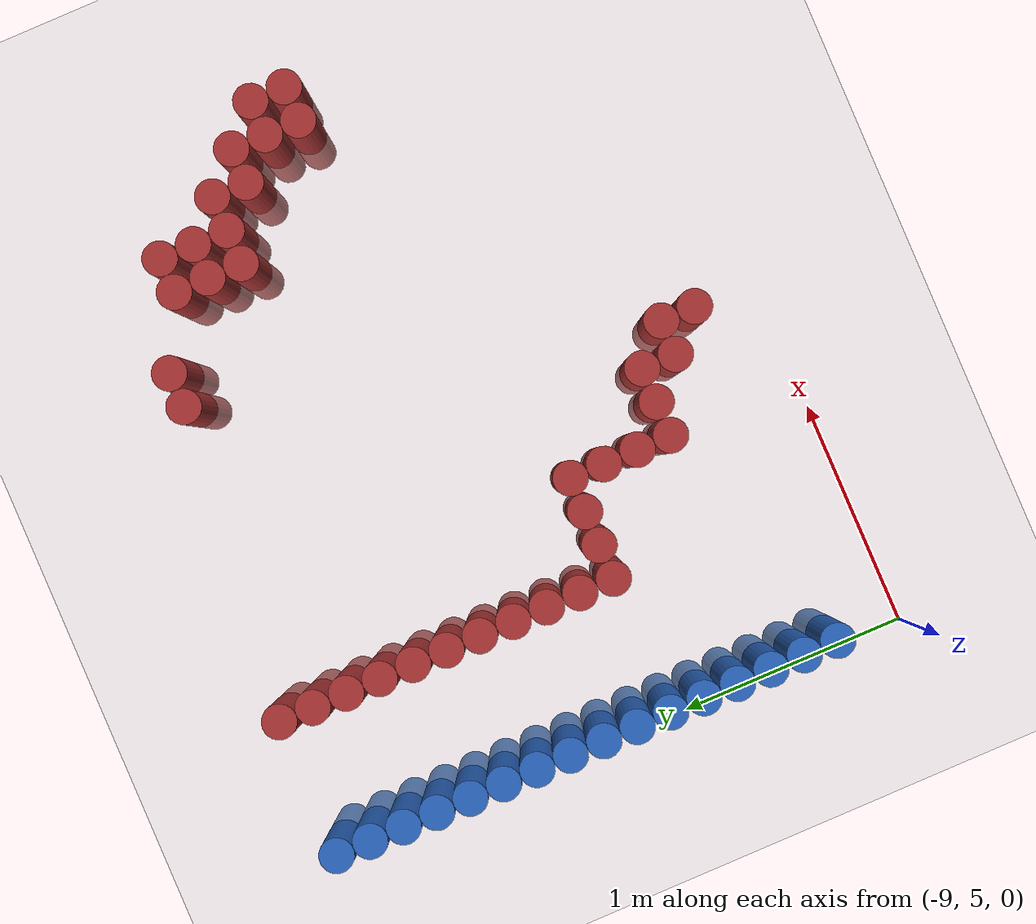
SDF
<sdf version="1.6">
 <world name="default">
  <model name="ground_plane">
   <static>1</static>
   <link name="link">
    <collision name="collision">
     <geometry><plane><normal>0 0 1</normal><size>100 100</size></plane></geometry>
     <surface><friction><ode><mu>100</mu><mu2>50</mu2></ode></friction></surface>
    </collision>
    <visual name="visual">
     <cast_shadows>0</cast_shadows>
     <geometry><plane><normal>0 0 1</normal><size>100 100</size></plane></geometry>
     <material>
      <script><uri>file://media/materials/scripts/gazebo.material</uri><name>Gazebo/Grey</name></script>
     </material>
    </visual>
   </link>
  </model>
  <model name="unit_cylinder_126">
   <static>1</static>
   <pose>-8.925000 5.325000 0.000000 0.000000 0.000000 0.000000</pose>
   <link name="link">
    <inertial>
     <mass>1</mass>
     <inertia><ixx>0.145833</ixx><ixy>0</ixy><ixz>0</ixz><iyy>0.145833</iyy><iyz>0</iyz><izz>0.125</izz></inertia>
    </inertial>
    <collision name="collision">
     <geometry><cylinder><radius>0.075000</radius><length>1</length></cylinder></geometry>
    </collision>
    <visual name="visual">
     <geometry><cylinder><radius>0.075000</radius><length>1</length></cylinder></geometry>
     <material>
      <ambient>0.152000 0.379000 0.720000 1</ambient>
      <diffuse>0.152000 0.379000 0.720000 1</diffuse>
     </material>
     <material>
      <script><name>Gazebo/Grey</name><uri>file://media/materials/scripts/gazebo.material</uri></script>
     </material>
    </visual>
   </link>
  </model>
  <model name="unit_cylinder_127">
   <static>1</static>
   <pose>-8.925000 5.475000 0.000000 0.000000 0.000000 0.000000</pose>
   <link name="link">
    <inertial>
     <mass>1</mass>
     <inertia><ixx>0.145833</ixx><ixy>0</ixy><ixz>0</ixz><iyy>0.145833</iyy><iyz>0</iyz><izz>0.125</izz></inertia>
    </inertial>
    <collision name="collision">
     <geometry><cylinder><radius>0.075000</radius><length>1</length></cylinder></geometry>
    </collision>
    <visual name="visual">
     <geometry><cylinder><radius>0.075000</radius><length>1</length></cylinder></geometry>
     <material>
      <ambient>0.152000 0.379000 0.720000 1</ambient>
      <diffuse>0.152000 0.379000 0.720000 1</diffuse>
     </material>
     <material>
      <script><name>Gazebo/Grey</name><uri>file://media/materials/scripts/gazebo.material</uri></script>
     </material>
    </visual>
   </link>
  </model>
  <model name="unit_cylinder_128">
   <static>1</static>
   <pose>-8.925000 5.625000 0.000000 0.000000 0.000000 0.000000</pose>
   <link name="link">
    <inertial>
     <mass>1</mass>
     <inertia><ixx>0.145833</ixx><ixy>0</ixy><ixz>0</ixz><iyy>0.145833</iyy><iyz>0</iyz><izz>0.125</izz></inertia>
    </inertial>
    <collision name="collision">
     <geometry><cylinder><radius>0.075000</radius><length>1</length></cylinder></geometry>
    </collision>
    <visual name="visual">
     <geometry><cylinder><radius>0.075000</radius><length>1</length></cylinder></geometry>
     <material>
      <ambient>0.152000 0.379000 0.720000 1</ambient>
      <diffuse>0.152000 0.379000 0.720000 1</diffuse>
     </material>
     <material>
      <script><name>Gazebo/Grey</name><uri>file://media/materials/scripts/gazebo.material</uri></script>
     </material>
    </visual>
   </link>
  </model>
  <model name="unit_cylinder_129">
   <static>1</static>
   <pose>-8.925000 5.775000 0.000000 0.000000 0.000000 0.000000</pose>
   <link name="link">
    <inertial>
     <mass>1</mass>
     <inertia><ixx>0.145833</ixx><ixy>0</ixy><ixz>0</ixz><iyy>0.145833</iyy><iyz>0</iyz><izz>0.125</izz></inertia>
    </inertial>
    <collision name="collision">
     <geometry><cylinder><radius>0.075000</radius><length>1</length></cylinder></geometry>
    </collision>
    <visual name="visual">
     <geometry><cylinder><radius>0.075000</radius><length>1</length></cylinder></geometry>
     <material>
      <ambient>0.152000 0.379000 0.720000 1</ambient>
      <diffuse>0.152000 0.379000 0.720000 1</diffuse>
     </material>
     <material>
      <script><name>Gazebo/Grey</name><uri>file://media/materials/scripts/gazebo.material</uri></script>
     </material>
    </visual>
   </link>
  </model>
  <model name="unit_cylinder_130">
   <static>1</static>
   <pose>-8.925000 5.925000 0.000000 0.000000 0.000000 0.000000</pose>
   <link name="link">
    <inertial>
     <mass>1</mass>
     <inertia><ixx>0.145833</ixx><ixy>0</ixy><ixz>0</ixz><iyy>0.145833</iyy><iyz>0</iyz><izz>0.125</izz></inertia>
    </inertial>
    <collision name="collision">
     <geometry><cylinder><radius>0.075000</radius><length>1</length></cylinder></geometry>
    </collision>
    <visual name="visual">
     <geometry><cylinder><radius>0.075000</radius><length>1</length></cylinder></geometry>
     <material>
      <ambient>0.152000 0.379000 0.720000 1</ambient>
      <diffuse>0.152000 0.379000 0.720000 1</diffuse>
     </material>
     <material>
      <script><name>Gazebo/Grey</name><uri>file://media/materials/scripts/gazebo.material</uri></script>
     </material>
    </visual>
   </link>
  </model>
  <model name="unit_cylinder_131">
   <static>1</static>
   <pose>-8.925000 6.075000 0.000000 0.000000 0.000000 0.000000</pose>
   <link name="link">
    <inertial>
     <mass>1</mass>
     <inertia><ixx>0.145833</ixx><ixy>0</ixy><ixz>0</ixz><iyy>0.145833</iyy><iyz>0</iyz><izz>0.125</izz></inertia>
    </inertial>
    <collision name="collision">
     <geometry><cylinder><radius>0.075000</radius><length>1</length></cylinder></geometry>
    </collision>
    <visual name="visual">
     <geometry><cylinder><radius>0.075000</radius><length>1</length></cylinder></geometry>
     <material>
      <ambient>0.152000 0.379000 0.720000 1</ambient>
      <diffuse>0.152000 0.379000 0.720000 1</diffuse>
     </material>
     <material>
      <script><name>Gazebo/Grey</name><uri>file://media/materials/scripts/gazebo.material</uri></script>
     </material>
    </visual>
   </link>
  </model>
  <model name="unit_cylinder_132">
   <static>1</static>
   <pose>-8.925000 6.225000 0.000000 0.000000 0.000000 0.000000</pose>
   <link name="link">
    <inertial>
     <mass>1</mass>
     <inertia><ixx>0.145833</ixx><ixy>0</ixy><ixz>0</ixz><iyy>0.145833</iyy><iyz>0</iyz><izz>0.125</izz></inertia>
    </inertial>
    <collision name="collision">
     <geometry><cylinder><radius>0.075000</radius><length>1</length></cylinder></geometry>
    </collision>
    <visual name="visual">
     <geometry><cylinder><radius>0.075000</radius><length>1</length></cylinder></geometry>
     <material>
      <ambient>0.152000 0.379000 0.720000 1</ambient>
      <diffuse>0.152000 0.379000 0.720000 1</diffuse>
     </material>
     <material>
      <script><name>Gazebo/Grey</name><uri>file://media/materials/scripts/gazebo.material</uri></script>
     </material>
    </visual>
   </link>
  </model>
  <model name="unit_cylinder_133">
   <static>1</static>
   <pose>-8.925000 6.375000 0.000000 0.000000 0.000000 0.000000</pose>
   <link name="link">
    <inertial>
     <mass>1</mass>
     <inertia><ixx>0.145833</ixx><ixy>0</ixy><ixz>0</ixz><iyy>0.145833</iyy><iyz>0</iyz><izz>0.125</izz></inertia>
    </inertial>
    <collision name="collision">
     <geometry><cylinder><radius>0.075000</radius><length>1</length></cylinder></geometry>
    </collision>
    <visual name="visual">
     <geometry><cylinder><radius>0.075000</radius><length>1</length></cylinder></geometry>
     <material>
      <ambient>0.152000 0.379000 0.720000 1</ambient>
      <diffuse>0.152000 0.379000 0.720000 1</diffuse>
     </material>
     <material>
      <script><name>Gazebo/Grey</name><uri>file://media/materials/scripts/gazebo.material</uri></script>
     </material>
    </visual>
   </link>
  </model>
  <model name="unit_cylinder_134">
   <static>1</static>
   <pose>-8.925000 6.525000 0.000000 0.000000 0.000000 0.000000</pose>
   <link name="link">
    <inertial>
     <mass>1</mass>
     <inertia><ixx>0.145833</ixx><ixy>0</ixy><ixz>0</ixz><iyy>0.145833</iyy><iyz>0</iyz><izz>0.125</izz></inertia>
    </inertial>
    <collision name="collision">
     <geometry><cylinder><radius>0.075000</radius><length>1</length></cylinder></geometry>
    </collision>
    <visual name="visual">
     <geometry><cylinder><radius>0.075000</radius><length>1</length></cylinder></geometry>
     <material>
      <ambient>0.152000 0.379000 0.720000 1</ambient>
      <diffuse>0.152000 0.379000 0.720000 1</diffuse>
     </material>
     <material>
      <script><name>Gazebo/Grey</name><uri>file://media/materials/scripts/gazebo.material</uri></script>
     </material>
    </visual>
   </link>
  </model>
  <model name="unit_cylinder_135">
   <static>1</static>
   <pose>-8.925000 6.675000 0.000000 0.000000 0.000000 0.000000</pose>
   <link name="link">
    <inertial>
     <mass>1</mass>
     <inertia><ixx>0.145833</ixx><ixy>0</ixy><ixz>0</ixz><iyy>0.145833</iyy><iyz>0</iyz><izz>0.125</izz></inertia>
    </inertial>
    <collision name="collision">
     <geometry><cylinder><radius>0.075000</radius><length>1</length></cylinder></geometry>
    </collision>
    <visual name="visual">
     <geometry><cylinder><radius>0.075000</radius><length>1</length></cylinder></geometry>
     <material>
      <ambient>0.152000 0.379000 0.720000 1</ambient>
      <diffuse>0.152000 0.379000 0.720000 1</diffuse>
     </material>
     <material>
      <script><name>Gazebo/Grey</name><uri>file://media/materials/scripts/gazebo.material</uri></script>
     </material>
    </visual>
   </link>
  </model>
  <model name="unit_cylinder_136">
   <static>1</static>
   <pose>-8.925000 6.825000 0.000000 0.000000 0.000000 0.000000</pose>
   <link name="link">
    <inertial>
     <mass>1</mass>
     <inertia><ixx>0.145833</ixx><ixy>0</ixy><ixz>0</ixz><iyy>0.145833</iyy><iyz>0</iyz><izz>0.125</izz></inertia>
    </inertial>
    <collision name="collision">
     <geometry><cylinder><radius>0.075000</radius><length>1</length></cylinder></geometry>
    </collision>
    <visual name="visual">
     <geometry><cylinder><radius>0.075000</radius><length>1</length></cylinder></geometry>
     <material>
      <ambient>0.152000 0.379000 0.720000 1</ambient>
      <diffuse>0.152000 0.379000 0.720000 1</diffuse>
     </material>
     <material>
      <script><name>Gazebo/Grey</name><uri>file://media/materials/scripts/gazebo.material</uri></script>
     </material>
    </visual>
   </link>
  </model>
  <model name="unit_cylinder_137">
   <static>1</static>
   <pose>-8.925000 6.975000 0.000000 0.000000 0.000000 0.000000</pose>
   <link name="link">
    <inertial>
     <mass>1</mass>
     <inertia><ixx>0.145833</ixx><ixy>0</ixy><ixz>0</ixz><iyy>0.145833</iyy><iyz>0</iyz><izz>0.125</izz></inertia>
    </inertial>
    <collision name="collision">
     <geometry><cylinder><radius>0.075000</radius><length>1</length></cylinder></geometry>
    </collision>
    <visual name="visual">
     <geometry><cylinder><radius>0.075000</radius><length>1</length></cylinder></geometry>
     <material>
      <ambient>0.152000 0.379000 0.720000 1</ambient>
      <diffuse>0.152000 0.379000 0.720000 1</diffuse>
     </material>
     <material>
      <script><name>Gazebo/Grey</name><uri>file://media/materials/scripts/gazebo.material</uri></script>
     </material>
    </visual>
   </link>
  </model>
  <model name="unit_cylinder_138">
   <static>1</static>
   <pose>-8.925000 7.125000 0.000000 0.000000 0.000000 0.000000</pose>
   <link name="link">
    <inertial>
     <mass>1</mass>
     <inertia><ixx>0.145833</ixx><ixy>0</ixy><ixz>0</ixz><iyy>0.145833</iyy><iyz>0</iyz><izz>0.125</izz></inertia>
    </inertial>
    <collision name="collision">
     <geometry><cylinder><radius>0.075000</radius><length>1</length></cylinder></geometry>
    </collision>
    <visual name="visual">
     <geometry><cylinder><radius>0.075000</radius><length>1</length></cylinder></geometry>
     <material>
      <ambient>0.152000 0.379000 0.720000 1</ambient>
      <diffuse>0.152000 0.379000 0.720000 1</diffuse>
     </material>
     <material>
      <script><name>Gazebo/Grey</name><uri>file://media/materials/scripts/gazebo.material</uri></script>
     </material>
    </visual>
   </link>
  </model>
  <model name="unit_cylinder_139">
   <static>1</static>
   <pose>-8.925000 7.275000 0.000000 0.000000 0.000000 0.000000</pose>
   <link name="link">
    <inertial>
     <mass>1</mass>
     <inertia><ixx>0.145833</ixx><ixy>0</ixy><ixz>0</ixz><iyy>0.145833</iyy><iyz>0</iyz><izz>0.125</izz></inertia>
    </inertial>
    <collision name="collision">
     <geometry><cylinder><radius>0.075000</radius><length>1</length></cylinder></geometry>
    </collision>
    <visual name="visual">
     <geometry><cylinder><radius>0.075000</radius><length>1</length></cylinder></geometry>
     <material>
      <ambient>0.152000 0.379000 0.720000 1</ambient>
      <diffuse>0.152000 0.379000 0.720000 1</diffuse>
     </material>
     <material>
      <script><name>Gazebo/Grey</name><uri>file://media/materials/scripts/gazebo.material</uri></script>
     </material>
    </visual>
   </link>
  </model>
  <model name="unit_cylinder_140">
   <static>1</static>
   <pose>-8.925000 7.425000 0.000000 0.000000 0.000000 0.000000</pose>
   <link name="link">
    <inertial>
     <mass>1</mass>
     <inertia><ixx>0.145833</ixx><ixy>0</ixy><ixz>0</ixz><iyy>0.145833</iyy><iyz>0</iyz><izz>0.125</izz></inertia>
    </inertial>
    <collision name="collision">
     <geometry><cylinder><radius>0.075000</radius><length>1</length></cylinder></geometry>
    </collision>
    <visual name="visual">
     <geometry><cylinder><radius>0.075000</radius><length>1</length></cylinder></geometry>
     <material>
      <ambient>0.152000 0.379000 0.720000 1</ambient>
      <diffuse>0.152000 0.379000 0.720000 1</diffuse>
     </material>
     <material>
      <script><name>Gazebo/Grey</name><uri>file://media/materials/scripts/gazebo.material</uri></script>
     </material>
    </visual>
   </link>
  </model>
  <model name="unit_cylinder_141">
   <static>1</static>
   <pose>-8.925000 7.575000 0.000000 0.000000 0.000000 0.000000</pose>
   <link name="link">
    <inertial>
     <mass>1</mass>
     <inertia><ixx>0.145833</ixx><ixy>0</ixy><ixz>0</ixz><iyy>0.145833</iyy><iyz>0</iyz><izz>0.125</izz></inertia>
    </inertial>
    <collision name="collision">
     <geometry><cylinder><radius>0.075000</radius><length>1</length></cylinder></geometry>
    </collision>
    <visual name="visual">
     <geometry><cylinder><radius>0.075000</radius><length>1</length></cylinder></geometry>
     <material>
      <ambient>0.152000 0.379000 0.720000 1</ambient>
      <diffuse>0.152000 0.379000 0.720000 1</diffuse>
     </material>
     <material>
      <script><name>Gazebo/Grey</name><uri>file://media/materials/scripts/gazebo.material</uri></script>
     </material>
    </visual>
   </link>
  </model>
  <model name="unit_cylinder_174">
   <static>1</static>
   <pose>-8.325000 6.075000 0.000000 0.000000 0.000000 0.000000</pose>
   <link name="link">
    <inertial>
     <mass>1</mass>
     <inertia><ixx>0.145833</ixx><ixy>0</ixy><ixz>0</ixz><iyy>0.145833</iyy><iyz>0</iyz><izz>0.125</izz></inertia>
    </inertial>
    <collision name="collision">
     <geometry><cylinder><radius>0.075000</radius><length>1</length></cylinder></geometry>
    </collision>
    <visual name="visual">
     <geometry><cylinder><radius>0.075000</radius><length>1</length></cylinder></geometry>
     <material>
      <ambient>0.648000 0.192000 0.192000 1</ambient>
      <diffuse>0.648000 0.192000 0.192000 1</diffuse>
     </material>
     <material>
      <script><name>Gazebo/Grey</name><uri>file://media/materials/scripts/gazebo.material</uri></script>
     </material>
    </visual>
   </link>
  </model>
  <model name="unit_cylinder_175">
   <static>1</static>
   <pose>-8.325000 6.225000 0.000000 0.000000 0.000000 0.000000</pose>
   <link name="link">
    <inertial>
     <mass>1</mass>
     <inertia><ixx>0.145833</ixx><ixy>0</ixy><ixz>0</ixz><iyy>0.145833</iyy><iyz>0</iyz><izz>0.125</izz></inertia>
    </inertial>
    <collision name="collision">
     <geometry><cylinder><radius>0.075000</radius><length>1</length></cylinder></geometry>
    </collision>
    <visual name="visual">
     <geometry><cylinder><radius>0.075000</radius><length>1</length></cylinder></geometry>
     <material>
      <ambient>0.648000 0.192000 0.192000 1</ambient>
      <diffuse>0.648000 0.192000 0.192000 1</diffuse>
     </material>
     <material>
      <script><name>Gazebo/Grey</name><uri>file://media/materials/scripts/gazebo.material</uri></script>
     </material>
    </visual>
   </link>
  </model>
  <model name="unit_cylinder_176">
   <static>1</static>
   <pose>-8.325000 6.375000 0.000000 0.000000 0.000000 0.000000</pose>
   <link name="link">
    <inertial>
     <mass>1</mass>
     <inertia><ixx>0.145833</ixx><ixy>0</ixy><ixz>0</ixz><iyy>0.145833</iyy><iyz>0</iyz><izz>0.125</izz></inertia>
    </inertial>
    <collision name="collision">
     <geometry><cylinder><radius>0.075000</radius><length>1</length></cylinder></geometry>
    </collision>
    <visual name="visual">
     <geometry><cylinder><radius>0.075000</radius><length>1</length></cylinder></geometry>
     <material>
      <ambient>0.648000 0.192000 0.192000 1</ambient>
      <diffuse>0.648000 0.192000 0.192000 1</diffuse>
     </material>
     <material>
      <script><name>Gazebo/Grey</name><uri>file://media/materials/scripts/gazebo.material</uri></script>
     </material>
    </visual>
   </link>
  </model>
  <model name="unit_cylinder_177">
   <static>1</static>
   <pose>-8.325000 6.525000 0.000000 0.000000 0.000000 0.000000</pose>
   <link name="link">
    <inertial>
     <mass>1</mass>
     <inertia><ixx>0.145833</ixx><ixy>0</ixy><ixz>0</ixz><iyy>0.145833</iyy><iyz>0</iyz><izz>0.125</izz></inertia>
    </inertial>
    <collision name="collision">
     <geometry><cylinder><radius>0.075000</radius><length>1</length></cylinder></geometry>
    </collision>
    <visual name="visual">
     <geometry><cylinder><radius>0.075000</radius><length>1</length></cylinder></geometry>
     <material>
      <ambient>0.648000 0.192000 0.192000 1</ambient>
      <diffuse>0.648000 0.192000 0.192000 1</diffuse>
     </material>
     <material>
      <script><name>Gazebo/Grey</name><uri>file://media/materials/scripts/gazebo.material</uri></script>
     </material>
    </visual>
   </link>
  </model>
  <model name="unit_cylinder_178">
   <static>1</static>
   <pose>-8.325000 6.675000 0.000000 0.000000 0.000000 0.000000</pose>
   <link name="link">
    <inertial>
     <mass>1</mass>
     <inertia><ixx>0.145833</ixx><ixy>0</ixy><ixz>0</ixz><iyy>0.145833</iyy><iyz>0</iyz><izz>0.125</izz></inertia>
    </inertial>
    <collision name="collision">
     <geometry><cylinder><radius>0.075000</radius><length>1</length></cylinder></geometry>
    </collision>
    <visual name="visual">
     <geometry><cylinder><radius>0.075000</radius><length>1</length></cylinder></geometry>
     <material>
      <ambient>0.648000 0.192000 0.192000 1</ambient>
      <diffuse>0.648000 0.192000 0.192000 1</diffuse>
     </material>
     <material>
      <script><name>Gazebo/Grey</name><uri>file://media/materials/scripts/gazebo.material</uri></script>
     </material>
    </visual>
   </link>
  </model>
  <model name="unit_cylinder_179">
   <static>1</static>
   <pose>-8.325000 6.825000 0.000000 0.000000 0.000000 0.000000</pose>
   <link name="link">
    <inertial>
     <mass>1</mass>
     <inertia><ixx>0.145833</ixx><ixy>0</ixy><ixz>0</ixz><iyy>0.145833</iyy><iyz>0</iyz><izz>0.125</izz></inertia>
    </inertial>
    <collision name="collision">
     <geometry><cylinder><radius>0.075000</radius><length>1</length></cylinder></geometry>
    </collision>
    <visual name="visual">
     <geometry><cylinder><radius>0.075000</radius><length>1</length></cylinder></geometry>
     <material>
      <ambient>0.648000 0.192000 0.192000 1</ambient>
      <diffuse>0.648000 0.192000 0.192000 1</diffuse>
     </material>
     <material>
      <script><name>Gazebo/Grey</name><uri>file://media/materials/scripts/gazebo.material</uri></script>
     </material>
    </visual>
   </link>
  </model>
  <model name="unit_cylinder_180">
   <static>1</static>
   <pose>-8.325000 6.975000 0.000000 0.000000 0.000000 0.000000</pose>
   <link name="link">
    <inertial>
     <mass>1</mass>
     <inertia><ixx>0.145833</ixx><ixy>0</ixy><ixz>0</ixz><iyy>0.145833</iyy><iyz>0</iyz><izz>0.125</izz></inertia>
    </inertial>
    <collision name="collision">
     <geometry><cylinder><radius>0.075000</radius><length>1</length></cylinder></geometry>
    </collision>
    <visual name="visual">
     <geometry><cylinder><radius>0.075000</radius><length>1</length></cylinder></geometry>
     <material>
      <ambient>0.648000 0.192000 0.192000 1</ambient>
      <diffuse>0.648000 0.192000 0.192000 1</diffuse>
     </material>
     <material>
      <script><name>Gazebo/Grey</name><uri>file://media/materials/scripts/gazebo.material</uri></script>
     </material>
    </visual>
   </link>
  </model>
  <model name="unit_cylinder_181">
   <static>1</static>
   <pose>-8.325000 7.125000 0.000000 0.000000 0.000000 0.000000</pose>
   <link name="link">
    <inertial>
     <mass>1</mass>
     <inertia><ixx>0.145833</ixx><ixy>0</ixy><ixz>0</ixz><iyy>0.145833</iyy><iyz>0</iyz><izz>0.125</izz></inertia>
    </inertial>
    <collision name="collision">
     <geometry><cylinder><radius>0.075000</radius><length>1</length></cylinder></geometry>
    </collision>
    <visual name="visual">
     <geometry><cylinder><radius>0.075000</radius><length>1</length></cylinder></geometry>
     <material>
      <ambient>0.648000 0.192000 0.192000 1</ambient>
      <diffuse>0.648000 0.192000 0.192000 1</diffuse>
     </material>
     <material>
      <script><name>Gazebo/Grey</name><uri>file://media/materials/scripts/gazebo.material</uri></script>
     </material>
    </visual>
   </link>
  </model>
  <model name="unit_cylinder_182">
   <static>1</static>
   <pose>-8.325000 7.275000 0.000000 0.000000 0.000000 0.000000</pose>
   <link name="link">
    <inertial>
     <mass>1</mass>
     <inertia><ixx>0.145833</ixx><ixy>0</ixy><ixz>0</ixz><iyy>0.145833</iyy><iyz>0</iyz><izz>0.125</izz></inertia>
    </inertial>
    <collision name="collision">
     <geometry><cylinder><radius>0.075000</radius><length>1</length></cylinder></geometry>
    </collision>
    <visual name="visual">
     <geometry><cylinder><radius>0.075000</radius><length>1</length></cylinder></geometry>
     <material>
      <ambient>0.648000 0.192000 0.192000 1</ambient>
      <diffuse>0.648000 0.192000 0.192000 1</diffuse>
     </material>
     <material>
      <script><name>Gazebo/Grey</name><uri>file://media/materials/scripts/gazebo.material</uri></script>
     </material>
    </visual>
   </link>
  </model>
  <model name="unit_cylinder_183">
   <static>1</static>
   <pose>-8.325000 7.425000 0.000000 0.000000 0.000000 0.000000</pose>
   <link name="link">
    <inertial>
     <mass>1</mass>
     <inertia><ixx>0.145833</ixx><ixy>0</ixy><ixz>0</ixz><iyy>0.145833</iyy><iyz>0</iyz><izz>0.125</izz></inertia>
    </inertial>
    <collision name="collision">
     <geometry><cylinder><radius>0.075000</radius><length>1</length></cylinder></geometry>
    </collision>
    <visual name="visual">
     <geometry><cylinder><radius>0.075000</radius><length>1</length></cylinder></geometry>
     <material>
      <ambient>0.648000 0.192000 0.192000 1</ambient>
      <diffuse>0.648000 0.192000 0.192000 1</diffuse>
     </material>
     <material>
      <script><name>Gazebo/Grey</name><uri>file://media/materials/scripts/gazebo.material</uri></script>
     </material>
    </visual>
   </link>
  </model>
  <model name="unit_cylinder_184">
   <static>1</static>
   <pose>-8.325000 7.575000 0.000000 0.000000 0.000000 0.000000</pose>
   <link name="link">
    <inertial>
     <mass>1</mass>
     <inertia><ixx>0.145833</ixx><ixy>0</ixy><ixz>0</ixz><iyy>0.145833</iyy><iyz>0</iyz><izz>0.125</izz></inertia>
    </inertial>
    <collision name="collision">
     <geometry><cylinder><radius>0.075000</radius><length>1</length></cylinder></geometry>
    </collision>
    <visual name="visual">
     <geometry><cylinder><radius>0.075000</radius><length>1</length></cylinder></geometry>
     <material>
      <ambient>0.648000 0.192000 0.192000 1</ambient>
      <diffuse>0.648000 0.192000 0.192000 1</diffuse>
     </material>
     <material>
      <script><name>Gazebo/Grey</name><uri>file://media/materials/scripts/gazebo.material</uri></script>
     </material>
    </visual>
   </link>
  </model>
  <model name="unit_cylinder_187">
   <static>1</static>
   <pose>-8.175000 6.075000 0.000000 0.000000 0.000000 0.000000</pose>
   <link name="link">
    <inertial>
     <mass>1</mass>
     <inertia><ixx>0.145833</ixx><ixy>0</ixy><ixz>0</ixz><iyy>0.145833</iyy><iyz>0</iyz><izz>0.125</izz></inertia>
    </inertial>
    <collision name="collision">
     <geometry><cylinder><radius>0.075000</radius><length>1</length></cylinder></geometry>
    </collision>
    <visual name="visual">
     <geometry><cylinder><radius>0.075000</radius><length>1</length></cylinder></geometry>
     <material>
      <ambient>0.648000 0.192000 0.192000 1</ambient>
      <diffuse>0.648000 0.192000 0.192000 1</diffuse>
     </material>
     <material>
      <script><name>Gazebo/Grey</name><uri>file://media/materials/scripts/gazebo.material</uri></script>
     </material>
    </visual>
   </link>
  </model>
  <model name="unit_cylinder_189">
   <static>1</static>
   <pose>-8.025000 6.075000 0.000000 0.000000 0.000000 0.000000</pose>
   <link name="link">
    <inertial>
     <mass>1</mass>
     <inertia><ixx>0.145833</ixx><ixy>0</ixy><ixz>0</ixz><iyy>0.145833</iyy><iyz>0</iyz><izz>0.125</izz></inertia>
    </inertial>
    <collision name="collision">
     <geometry><cylinder><radius>0.075000</radius><length>1</length></cylinder></geometry>
    </collision>
    <visual name="visual">
     <geometry><cylinder><radius>0.075000</radius><length>1</length></cylinder></geometry>
     <material>
      <ambient>0.648000 0.192000 0.192000 1</ambient>
      <diffuse>0.648000 0.192000 0.192000 1</diffuse>
     </material>
     <material>
      <script><name>Gazebo/Grey</name><uri>file://media/materials/scripts/gazebo.material</uri></script>
     </material>
    </visual>
   </link>
  </model>
  <model name="unit_cylinder_191">
   <static>1</static>
   <pose>-7.875000 5.625000 0.000000 0.000000 0.000000 0.000000</pose>
   <link name="link">
    <inertial>
     <mass>1</mass>
     <inertia><ixx>0.145833</ixx><ixy>0</ixy><ixz>0</ixz><iyy>0.145833</iyy><iyz>0</iyz><izz>0.125</izz></inertia>
    </inertial>
    <collision name="collision">
     <geometry><cylinder><radius>0.075000</radius><length>1</length></cylinder></geometry>
    </collision>
    <visual name="visual">
     <geometry><cylinder><radius>0.075000</radius><length>1</length></cylinder></geometry>
     <material>
      <ambient>0.648000 0.192000 0.192000 1</ambient>
      <diffuse>0.648000 0.192000 0.192000 1</diffuse>
     </material>
     <material>
      <script><name>Gazebo/Grey</name><uri>file://media/materials/scripts/gazebo.material</uri></script>
     </material>
    </visual>
   </link>
  </model>
  <model name="unit_cylinder_192">
   <static>1</static>
   <pose>-7.875000 5.775000 0.000000 0.000000 0.000000 0.000000</pose>
   <link name="link">
    <inertial>
     <mass>1</mass>
     <inertia><ixx>0.145833</ixx><ixy>0</ixy><ixz>0</ixz><iyy>0.145833</iyy><iyz>0</iyz><izz>0.125</izz></inertia>
    </inertial>
    <collision name="collision">
     <geometry><cylinder><radius>0.075000</radius><length>1</length></cylinder></geometry>
    </collision>
    <visual name="visual">
     <geometry><cylinder><radius>0.075000</radius><length>1</length></cylinder></geometry>
     <material>
      <ambient>0.648000 0.192000 0.192000 1</ambient>
      <diffuse>0.648000 0.192000 0.192000 1</diffuse>
     </material>
     <material>
      <script><name>Gazebo/Grey</name><uri>file://media/materials/scripts/gazebo.material</uri></script>
     </material>
    </visual>
   </link>
  </model>
  <model name="unit_cylinder_193">
   <static>1</static>
   <pose>-7.875000 5.925000 0.000000 0.000000 0.000000 0.000000</pose>
   <link name="link">
    <inertial>
     <mass>1</mass>
     <inertia><ixx>0.145833</ixx><ixy>0</ixy><ixz>0</ixz><iyy>0.145833</iyy><iyz>0</iyz><izz>0.125</izz></inertia>
    </inertial>
    <collision name="collision">
     <geometry><cylinder><radius>0.075000</radius><length>1</length></cylinder></geometry>
    </collision>
    <visual name="visual">
     <geometry><cylinder><radius>0.075000</radius><length>1</length></cylinder></geometry>
     <material>
      <ambient>0.648000 0.192000 0.192000 1</ambient>
      <diffuse>0.648000 0.192000 0.192000 1</diffuse>
     </material>
     <material>
      <script><name>Gazebo/Grey</name><uri>file://media/materials/scripts/gazebo.material</uri></script>
     </material>
    </visual>
   </link>
  </model>
  <model name="unit_cylinder_194">
   <static>1</static>
   <pose>-7.875000 6.075000 0.000000 0.000000 0.000000 0.000000</pose>
   <link name="link">
    <inertial>
     <mass>1</mass>
     <inertia><ixx>0.145833</ixx><ixy>0</ixy><ixz>0</ixz><iyy>0.145833</iyy><iyz>0</iyz><izz>0.125</izz></inertia>
    </inertial>
    <collision name="collision">
     <geometry><cylinder><radius>0.075000</radius><length>1</length></cylinder></geometry>
    </collision>
    <visual name="visual">
     <geometry><cylinder><radius>0.075000</radius><length>1</length></cylinder></geometry>
     <material>
      <ambient>0.648000 0.192000 0.192000 1</ambient>
      <diffuse>0.648000 0.192000 0.192000 1</diffuse>
     </material>
     <material>
      <script><name>Gazebo/Grey</name><uri>file://media/materials/scripts/gazebo.material</uri></script>
     </material>
    </visual>
   </link>
  </model>
  <model name="unit_cylinder_196">
   <static>1</static>
   <pose>-7.725000 5.625000 0.000000 0.000000 0.000000 0.000000</pose>
   <link name="link">
    <inertial>
     <mass>1</mass>
     <inertia><ixx>0.145833</ixx><ixy>0</ixy><ixz>0</ixz><iyy>0.145833</iyy><iyz>0</iyz><izz>0.125</izz></inertia>
    </inertial>
    <collision name="collision">
     <geometry><cylinder><radius>0.075000</radius><length>1</length></cylinder></geometry>
    </collision>
    <visual name="visual">
     <geometry><cylinder><radius>0.075000</radius><length>1</length></cylinder></geometry>
     <material>
      <ambient>0.648000 0.192000 0.192000 1</ambient>
      <diffuse>0.648000 0.192000 0.192000 1</diffuse>
     </material>
     <material>
      <script><name>Gazebo/Grey</name><uri>file://media/materials/scripts/gazebo.material</uri></script>
     </material>
    </visual>
   </link>
  </model>
  <model name="unit_cylinder_198">
   <static>1</static>
   <pose>-7.575000 5.475000 0.000000 0.000000 0.000000 0.000000</pose>
   <link name="link">
    <inertial>
     <mass>1</mass>
     <inertia><ixx>0.145833</ixx><ixy>0</ixy><ixz>0</ixz><iyy>0.145833</iyy><iyz>0</iyz><izz>0.125</izz></inertia>
    </inertial>
    <collision name="collision">
     <geometry><cylinder><radius>0.075000</radius><length>1</length></cylinder></geometry>
    </collision>
    <visual name="visual">
     <geometry><cylinder><radius>0.075000</radius><length>1</length></cylinder></geometry>
     <material>
      <ambient>0.648000 0.192000 0.192000 1</ambient>
      <diffuse>0.648000 0.192000 0.192000 1</diffuse>
     </material>
     <material>
      <script><name>Gazebo/Grey</name><uri>file://media/materials/scripts/gazebo.material</uri></script>
     </material>
    </visual>
   </link>
  </model>
  <model name="unit_cylinder_199">
   <static>1</static>
   <pose>-7.575000 5.625000 0.000000 0.000000 0.000000 0.000000</pose>
   <link name="link">
    <inertial>
     <mass>1</mass>
     <inertia><ixx>0.145833</ixx><ixy>0</ixy><ixz>0</ixz><iyy>0.145833</iyy><iyz>0</iyz><izz>0.125</izz></inertia>
    </inertial>
    <collision name="collision">
     <geometry><cylinder><radius>0.075000</radius><length>1</length></cylinder></geometry>
    </collision>
    <visual name="visual">
     <geometry><cylinder><radius>0.075000</radius><length>1</length></cylinder></geometry>
     <material>
      <ambient>0.648000 0.192000 0.192000 1</ambient>
      <diffuse>0.648000 0.192000 0.192000 1</diffuse>
     </material>
     <material>
      <script><name>Gazebo/Grey</name><uri>file://media/materials/scripts/gazebo.material</uri></script>
     </material>
    </visual>
   </link>
  </model>
  <model name="unit_cylinder_201">
   <static>1</static>
   <pose>-7.425000 5.325000 0.000000 0.000000 0.000000 0.000000</pose>
   <link name="link">
    <inertial>
     <mass>1</mass>
     <inertia><ixx>0.145833</ixx><ixy>0</ixy><ixz>0</ixz><iyy>0.145833</iyy><iyz>0</iyz><izz>0.125</izz></inertia>
    </inertial>
    <collision name="collision">
     <geometry><cylinder><radius>0.075000</radius><length>1</length></cylinder></geometry>
    </collision>
    <visual name="visual">
     <geometry><cylinder><radius>0.075000</radius><length>1</length></cylinder></geometry>
     <material>
      <ambient>0.648000 0.192000 0.192000 1</ambient>
      <diffuse>0.648000 0.192000 0.192000 1</diffuse>
     </material>
     <material>
      <script><name>Gazebo/Grey</name><uri>file://media/materials/scripts/gazebo.material</uri></script>
     </material>
    </visual>
   </link>
  </model>
  <model name="unit_cylinder_202">
   <static>1</static>
   <pose>-7.425000 5.475000 0.000000 0.000000 0.000000 0.000000</pose>
   <link name="link">
    <inertial>
     <mass>1</mass>
     <inertia><ixx>0.145833</ixx><ixy>0</ixy><ixz>0</ixz><iyy>0.145833</iyy><iyz>0</iyz><izz>0.125</izz></inertia>
    </inertial>
    <collision name="collision">
     <geometry><cylinder><radius>0.075000</radius><length>1</length></cylinder></geometry>
    </collision>
    <visual name="visual">
     <geometry><cylinder><radius>0.075000</radius><length>1</length></cylinder></geometry>
     <material>
      <ambient>0.648000 0.192000 0.192000 1</ambient>
      <diffuse>0.648000 0.192000 0.192000 1</diffuse>
     </material>
     <material>
      <script><name>Gazebo/Grey</name><uri>file://media/materials/scripts/gazebo.material</uri></script>
     </material>
    </visual>
   </link>
  </model>
  <model name="unit_cylinder_211">
   <static>1</static>
   <pose>-6.975000 7.425000 0.000000 0.000000 0.000000 0.000000</pose>
   <link name="link">
    <inertial>
     <mass>1</mass>
     <inertia><ixx>0.145833</ixx><ixy>0</ixy><ixz>0</ixz><iyy>0.145833</iyy><iyz>0</iyz><izz>0.125</izz></inertia>
    </inertial>
    <collision name="collision">
     <geometry><cylinder><radius>0.075000</radius><length>1</length></cylinder></geometry>
    </collision>
    <visual name="visual">
     <geometry><cylinder><radius>0.075000</radius><length>1</length></cylinder></geometry>
     <material>
      <ambient>0.648000 0.192000 0.192000 1</ambient>
      <diffuse>0.648000 0.192000 0.192000 1</diffuse>
     </material>
     <material>
      <script><name>Gazebo/Grey</name><uri>file://media/materials/scripts/gazebo.material</uri></script>
     </material>
    </visual>
   </link>
  </model>
  <model name="unit_cylinder_215">
   <static>1</static>
   <pose>-6.825000 7.425000 0.000000 0.000000 0.000000 0.000000</pose>
   <link name="link">
    <inertial>
     <mass>1</mass>
     <inertia><ixx>0.145833</ixx><ixy>0</ixy><ixz>0</ixz><iyy>0.145833</iyy><iyz>0</iyz><izz>0.125</izz></inertia>
    </inertial>
    <collision name="collision">
     <geometry><cylinder><radius>0.075000</radius><length>1</length></cylinder></geometry>
    </collision>
    <visual name="visual">
     <geometry><cylinder><radius>0.075000</radius><length>1</length></cylinder></geometry>
     <material>
      <ambient>0.648000 0.192000 0.192000 1</ambient>
      <diffuse>0.648000 0.192000 0.192000 1</diffuse>
     </material>
     <material>
      <script><name>Gazebo/Grey</name><uri>file://media/materials/scripts/gazebo.material</uri></script>
     </material>
    </visual>
   </link>
  </model>
  <model name="unit_cylinder_223">
   <static>1</static>
   <pose>-6.525000 6.975000 0.000000 0.000000 0.000000 0.000000</pose>
   <link name="link">
    <inertial>
     <mass>1</mass>
     <inertia><ixx>0.145833</ixx><ixy>0</ixy><ixz>0</ixz><iyy>0.145833</iyy><iyz>0</iyz><izz>0.125</izz></inertia>
    </inertial>
    <collision name="collision">
     <geometry><cylinder><radius>0.075000</radius><length>1</length></cylinder></geometry>
    </collision>
    <visual name="visual">
     <geometry><cylinder><radius>0.075000</radius><length>1</length></cylinder></geometry>
     <material>
      <ambient>0.648000 0.192000 0.192000 1</ambient>
      <diffuse>0.648000 0.192000 0.192000 1</diffuse>
     </material>
     <material>
      <script><name>Gazebo/Grey</name><uri>file://media/materials/scripts/gazebo.material</uri></script>
     </material>
    </visual>
   </link>
  </model>
  <model name="unit_cylinder_224">
   <static>1</static>
   <pose>-6.525000 7.125000 0.000000 0.000000 0.000000 0.000000</pose>
   <link name="link">
    <inertial>
     <mass>1</mass>
     <inertia><ixx>0.145833</ixx><ixy>0</ixy><ixz>0</ixz><iyy>0.145833</iyy><iyz>0</iyz><izz>0.125</izz></inertia>
    </inertial>
    <collision name="collision">
     <geometry><cylinder><radius>0.075000</radius><length>1</length></cylinder></geometry>
    </collision>
    <visual name="visual">
     <geometry><cylinder><radius>0.075000</radius><length>1</length></cylinder></geometry>
     <material>
      <ambient>0.648000 0.192000 0.192000 1</ambient>
      <diffuse>0.648000 0.192000 0.192000 1</diffuse>
     </material>
     <material>
      <script><name>Gazebo/Grey</name><uri>file://media/materials/scripts/gazebo.material</uri></script>
     </material>
    </visual>
   </link>
  </model>
  <model name="unit_cylinder_225">
   <static>1</static>
   <pose>-6.525000 7.275000 0.000000 0.000000 0.000000 0.000000</pose>
   <link name="link">
    <inertial>
     <mass>1</mass>
     <inertia><ixx>0.145833</ixx><ixy>0</ixy><ixz>0</ixz><iyy>0.145833</iyy><iyz>0</iyz><izz>0.125</izz></inertia>
    </inertial>
    <collision name="collision">
     <geometry><cylinder><radius>0.075000</radius><length>1</length></cylinder></geometry>
    </collision>
    <visual name="visual">
     <geometry><cylinder><radius>0.075000</radius><length>1</length></cylinder></geometry>
     <material>
      <ambient>0.648000 0.192000 0.192000 1</ambient>
      <diffuse>0.648000 0.192000 0.192000 1</diffuse>
     </material>
     <material>
      <script><name>Gazebo/Grey</name><uri>file://media/materials/scripts/gazebo.material</uri></script>
     </material>
    </visual>
   </link>
  </model>
  <model name="unit_cylinder_230">
   <static>1</static>
   <pose>-6.375000 6.975000 0.000000 0.000000 0.000000 0.000000</pose>
   <link name="link">
    <inertial>
     <mass>1</mass>
     <inertia><ixx>0.145833</ixx><ixy>0</ixy><ixz>0</ixz><iyy>0.145833</iyy><iyz>0</iyz><izz>0.125</izz></inertia>
    </inertial>
    <collision name="collision">
     <geometry><cylinder><radius>0.075000</radius><length>1</length></cylinder></geometry>
    </collision>
    <visual name="visual">
     <geometry><cylinder><radius>0.075000</radius><length>1</length></cylinder></geometry>
     <material>
      <ambient>0.648000 0.192000 0.192000 1</ambient>
      <diffuse>0.648000 0.192000 0.192000 1</diffuse>
     </material>
     <material>
      <script><name>Gazebo/Grey</name><uri>file://media/materials/scripts/gazebo.material</uri></script>
     </material>
    </visual>
   </link>
  </model>
  <model name="unit_cylinder_231">
   <static>1</static>
   <pose>-6.375000 7.125000 0.000000 0.000000 0.000000 0.000000</pose>
   <link name="link">
    <inertial>
     <mass>1</mass>
     <inertia><ixx>0.145833</ixx><ixy>0</ixy><ixz>0</ixz><iyy>0.145833</iyy><iyz>0</iyz><izz>0.125</izz></inertia>
    </inertial>
    <collision name="collision">
     <geometry><cylinder><radius>0.075000</radius><length>1</length></cylinder></geometry>
    </collision>
    <visual name="visual">
     <geometry><cylinder><radius>0.075000</radius><length>1</length></cylinder></geometry>
     <material>
      <ambient>0.648000 0.192000 0.192000 1</ambient>
      <diffuse>0.648000 0.192000 0.192000 1</diffuse>
     </material>
     <material>
      <script><name>Gazebo/Grey</name><uri>file://media/materials/scripts/gazebo.material</uri></script>
     </material>
    </visual>
   </link>
  </model>
  <model name="unit_cylinder_232">
   <static>1</static>
   <pose>-6.375000 7.275000 0.000000 0.000000 0.000000 0.000000</pose>
   <link name="link">
    <inertial>
     <mass>1</mass>
     <inertia><ixx>0.145833</ixx><ixy>0</ixy><ixz>0</ixz><iyy>0.145833</iyy><iyz>0</iyz><izz>0.125</izz></inertia>
    </inertial>
    <collision name="collision">
     <geometry><cylinder><radius>0.075000</radius><length>1</length></cylinder></geometry>
    </collision>
    <visual name="visual">
     <geometry><cylinder><radius>0.075000</radius><length>1</length></cylinder></geometry>
     <material>
      <ambient>0.648000 0.192000 0.192000 1</ambient>
      <diffuse>0.648000 0.192000 0.192000 1</diffuse>
     </material>
     <material>
      <script><name>Gazebo/Grey</name><uri>file://media/materials/scripts/gazebo.material</uri></script>
     </material>
    </visual>
   </link>
  </model>
  <model name="unit_cylinder_236">
   <static>1</static>
   <pose>-6.225000 6.825000 0.000000 0.000000 0.000000 0.000000</pose>
   <link name="link">
    <inertial>
     <mass>1</mass>
     <inertia><ixx>0.145833</ixx><ixy>0</ixy><ixz>0</ixz><iyy>0.145833</iyy><iyz>0</iyz><izz>0.125</izz></inertia>
    </inertial>
    <collision name="collision">
     <geometry><cylinder><radius>0.075000</radius><length>1</length></cylinder></geometry>
    </collision>
    <visual name="visual">
     <geometry><cylinder><radius>0.075000</radius><length>1</length></cylinder></geometry>
     <material>
      <ambient>0.648000 0.192000 0.192000 1</ambient>
      <diffuse>0.648000 0.192000 0.192000 1</diffuse>
     </material>
     <material>
      <script><name>Gazebo/Grey</name><uri>file://media/materials/scripts/gazebo.material</uri></script>
     </material>
    </visual>
   </link>
  </model>
  <model name="unit_cylinder_237">
   <static>1</static>
   <pose>-6.225000 6.975000 0.000000 0.000000 0.000000 0.000000</pose>
   <link name="link">
    <inertial>
     <mass>1</mass>
     <inertia><ixx>0.145833</ixx><ixy>0</ixy><ixz>0</ixz><iyy>0.145833</iyy><iyz>0</iyz><izz>0.125</izz></inertia>
    </inertial>
    <collision name="collision">
     <geometry><cylinder><radius>0.075000</radius><length>1</length></cylinder></geometry>
    </collision>
    <visual name="visual">
     <geometry><cylinder><radius>0.075000</radius><length>1</length></cylinder></geometry>
     <material>
      <ambient>0.648000 0.192000 0.192000 1</ambient>
      <diffuse>0.648000 0.192000 0.192000 1</diffuse>
     </material>
     <material>
      <script><name>Gazebo/Grey</name><uri>file://media/materials/scripts/gazebo.material</uri></script>
     </material>
    </visual>
   </link>
  </model>
  <model name="unit_cylinder_240">
   <static>1</static>
   <pose>-6.075000 6.525000 0.000000 0.000000 0.000000 0.000000</pose>
   <link name="link">
    <inertial>
     <mass>1</mass>
     <inertia><ixx>0.145833</ixx><ixy>0</ixy><ixz>0</ixz><iyy>0.145833</iyy><iyz>0</iyz><izz>0.125</izz></inertia>
    </inertial>
    <collision name="collision">
     <geometry><cylinder><radius>0.075000</radius><length>1</length></cylinder></geometry>
    </collision>
    <visual name="visual">
     <geometry><cylinder><radius>0.075000</radius><length>1</length></cylinder></geometry>
     <material>
      <ambient>0.648000 0.192000 0.192000 1</ambient>
      <diffuse>0.648000 0.192000 0.192000 1</diffuse>
     </material>
     <material>
      <script><name>Gazebo/Grey</name><uri>file://media/materials/scripts/gazebo.material</uri></script>
     </material>
    </visual>
   </link>
  </model>
  <model name="unit_cylinder_241">
   <static>1</static>
   <pose>-6.075000 6.675000 0.000000 0.000000 0.000000 0.000000</pose>
   <link name="link">
    <inertial>
     <mass>1</mass>
     <inertia><ixx>0.145833</ixx><ixy>0</ixy><ixz>0</ixz><iyy>0.145833</iyy><iyz>0</iyz><izz>0.125</izz></inertia>
    </inertial>
    <collision name="collision">
     <geometry><cylinder><radius>0.075000</radius><length>1</length></cylinder></geometry>
    </collision>
    <visual name="visual">
     <geometry><cylinder><radius>0.075000</radius><length>1</length></cylinder></geometry>
     <material>
      <ambient>0.648000 0.192000 0.192000 1</ambient>
      <diffuse>0.648000 0.192000 0.192000 1</diffuse>
     </material>
     <material>
      <script><name>Gazebo/Grey</name><uri>file://media/materials/scripts/gazebo.material</uri></script>
     </material>
    </visual>
   </link>
  </model>
  <model name="unit_cylinder_242">
   <static>1</static>
   <pose>-6.075000 6.825000 0.000000 0.000000 0.000000 0.000000</pose>
   <link name="link">
    <inertial>
     <mass>1</mass>
     <inertia><ixx>0.145833</ixx><ixy>0</ixy><ixz>0</ixz><iyy>0.145833</iyy><iyz>0</iyz><izz>0.125</izz></inertia>
    </inertial>
    <collision name="collision">
     <geometry><cylinder><radius>0.075000</radius><length>1</length></cylinder></geometry>
    </collision>
    <visual name="visual">
     <geometry><cylinder><radius>0.075000</radius><length>1</length></cylinder></geometry>
     <material>
      <ambient>0.648000 0.192000 0.192000 1</ambient>
      <diffuse>0.648000 0.192000 0.192000 1</diffuse>
     </material>
     <material>
      <script><name>Gazebo/Grey</name><uri>file://media/materials/scripts/gazebo.material</uri></script>
     </material>
    </visual>
   </link>
  </model>
  <model name="unit_cylinder_243">
   <static>1</static>
   <pose>-5.925000 6.525000 0.000000 0.000000 0.000000 0.000000</pose>
   <link name="link">
    <inertial>
     <mass>1</mass>
     <inertia><ixx>0.145833</ixx><ixy>0</ixy><ixz>0</ixz><iyy>0.145833</iyy><iyz>0</iyz><izz>0.125</izz></inertia>
    </inertial>
    <collision name="collision">
     <geometry><cylinder><radius>0.075000</radius><length>1</length></cylinder></geometry>
    </collision>
    <visual name="visual">
     <geometry><cylinder><radius>0.075000</radius><length>1</length></cylinder></geometry>
     <material>
      <ambient>0.648000 0.192000 0.192000 1</ambient>
      <diffuse>0.648000 0.192000 0.192000 1</diffuse>
     </material>
     <material>
      <script><name>Gazebo/Grey</name><uri>file://media/materials/scripts/gazebo.material</uri></script>
     </material>
    </visual>
   </link>
  </model>
  <model name="unit_cylinder_244">
   <static>1</static>
   <pose>-5.925000 6.675000 0.000000 0.000000 0.000000 0.000000</pose>
   <link name="link">
    <inertial>
     <mass>1</mass>
     <inertia><ixx>0.145833</ixx><ixy>0</ixy><ixz>0</ixz><iyy>0.145833</iyy><iyz>0</iyz><izz>0.125</izz></inertia>
    </inertial>
    <collision name="collision">
     <geometry><cylinder><radius>0.075000</radius><length>1</length></cylinder></geometry>
    </collision>
    <visual name="visual">
     <geometry><cylinder><radius>0.075000</radius><length>1</length></cylinder></geometry>
     <material>
      <ambient>0.648000 0.192000 0.192000 1</ambient>
      <diffuse>0.648000 0.192000 0.192000 1</diffuse>
     </material>
     <material>
      <script><name>Gazebo/Grey</name><uri>file://media/materials/scripts/gazebo.material</uri></script>
     </material>
    </visual>
   </link>
  </model>
 </world>
</sdf>
